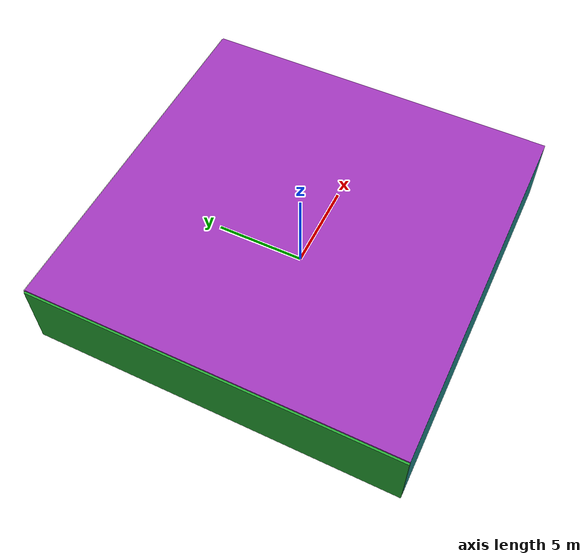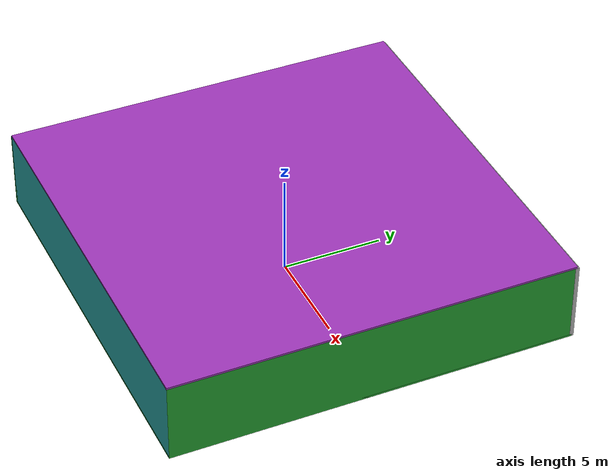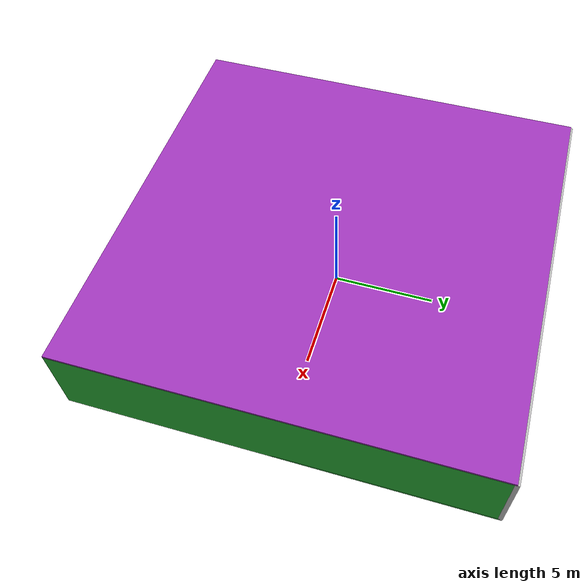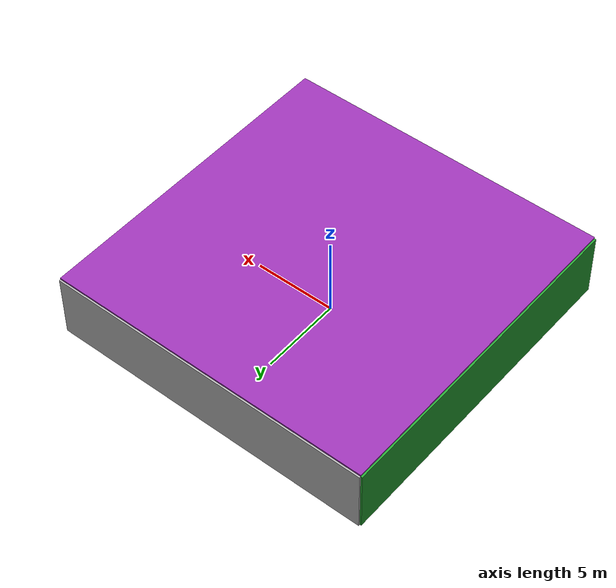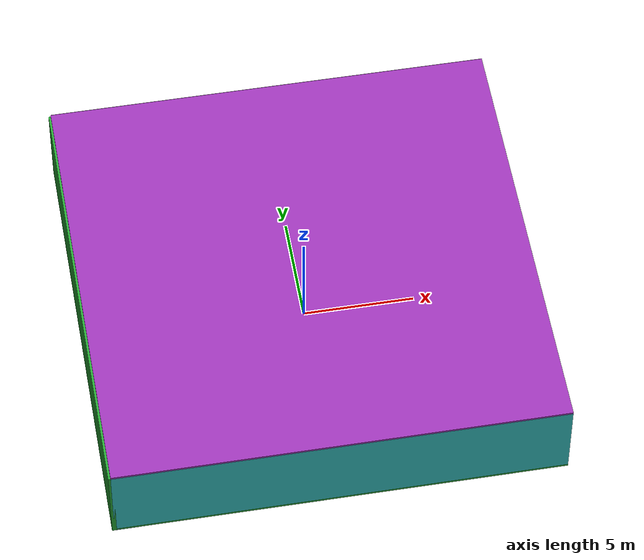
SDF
<sdf version="1.4">
 <world name="default">
  <physics type="ode">
   <max_step_size>0.001</max_step_size>
   <real_time_factor>1</real_time_factor>
   <real_time_update_rate>1000</real_time_update_rate>
   <gravity>0 0 -9.8</gravity>
  </physics>
  <scene><ambient>0.4 0.4 0.4 1</ambient><background>0.7 0.7 0.7 1</background><shadows>1</shadows></scene>
  <model name="Surrounding">
   <static>1</static>
   <link name="Ceiling">
    <collision name="Ceiling_Collision"><geometry><box><size>20 20 0.1</size></box></geometry></collision>
    <visual name="Ceiling_Visual">
     <geometry><box><size>20 20 0.1</size></box></geometry>
     <material>
      <script><uri>file://media/materials/scripts/gazebo.material</uri><name>Gazebo/Purple</name></script>
     </material>
    </visual>
    <pose>0 0 4.05 0 0 0</pose>
   </link>
   <link name="Wall_South">
    <collision name="Wall_South_Collision">
     <geometry><box><size>20 0 4</size></box></geometry>
     <pose>0 0 2 0 -0 0</pose>
    </collision>
    <visual name="Wall_South_Visual">
     <pose>0 0 2 0 -0 0</pose>
     <geometry><box><size>20 0 4</size></box></geometry>
     <material>
      <script>
       <uri>file://media/materials/scripts/gazebo.material</uri>
       <name>Gazebo/TurquoiseGlowOutline</name>
      </script>
     </material>
    </visual>
    <velocity_decay><linear>0</linear><angular>0</angular></velocity_decay>
    <pose>0 -10 0 0 -0 0</pose>
   </link>
   <link name="Wall_East">
    <collision name="Wall_21_Collision">
     <geometry><box><size>20 0 4</size></box></geometry>
     <pose>0 0 2 0 -0 0</pose>
    </collision>
    <visual name="Wall_21_Visual">
     <pose>0 0 2 0 -0 0</pose>
     <geometry><box><size>20 0 4</size></box></geometry>
     <material>
      <script><uri>file://media/materials/scripts/gazebo.material</uri><name>Gazebo/GreenGlow</name></script>
     </material>
    </visual>
    <velocity_decay><linear>0</linear><angular>0</angular></velocity_decay>
    <pose>10 0 0 0 -0 1.5708</pose>
   </link>
   <link name="Wall_North">
    <collision name="Wall_22_Collision">
     <geometry><box><size>20 0.2 4</size></box></geometry>
     <pose>0 0 2 0 -0 0</pose>
    </collision>
    <visual name="Wall_22_Visual">
     <pose>0 0 2 0 -0 0</pose>
     <geometry><box><size>20 0.2 4</size></box></geometry>
     <material>
      <script><uri>file://media/materials/scripts/gazebo.material</uri><name>Gazebo/JointAnchor</name></script>
     </material>
    </visual>
    <velocity_decay><linear>0</linear><angular>0</angular></velocity_decay>
    <pose>0 10 0 0 -0 0</pose>
   </link>
   <link name="Wall_West">
    <collision name="Wall_23_Collision">
     <geometry><box><size>20 0.2 4</size></box></geometry>
     <pose>0 0 2 0 -0 0</pose>
    </collision>
    <visual name="Wall_23_Visual">
     <pose>0 0 2 0 -0 0</pose>
     <geometry><box><size>20 0.2 4</size></box></geometry>
     <material>
      <script><uri>file://media/materials/scripts/gazebo.material</uri><name>Gazebo/GreenGlow</name></script>
     </material>
    </visual>
    <velocity_decay><linear>0</linear><angular>0</angular></velocity_decay>
    <pose>-10 0 0 0 0 -1.5708</pose>
   </link>
   <link name="Ground_link">
    <collision name="collision">
     <pose>0 0 .05 0 -0 0</pose>
     <geometry><box><size>20 20 0.1</size></box></geometry>
    </collision>
    <visual name="visual">
     <pose>0 0 .05 0 -0 0</pose>
     <geometry><box><size>20 20 0.1</size></box></geometry>
     <material>
      <script><uri>file://media/materials/scripts/gazebo.material</uri><name>Gazebo/Green</name></script>
     </material>
    </visual>
   </link>
   <static>1</static>
  </model>
  <spherical_coordinates>
   <surface_model>EARTH_WGS84</surface_model>
   <latitude_deg>0</latitude_deg>
   <longitude_deg>0</longitude_deg>
   <elevation>0</elevation>
   <heading_deg>0</heading_deg>
  </spherical_coordinates>
  <light name="lightball_0" type="diffuse">
   <diffuse>0.8 0.8 0.8 1</diffuse>
   <specular>0.2 0.2 0.2 1</specular>
   <attenuation>
    <range>100</range>
    <constant>0.7</constant>
    <linear>0.01</linear>
    <quadratic>0.001</quadratic>
   </attenuation>
   <direction>-0.5 0.1 -0.9</direction>
   <pose>-3.08782857376 -8.26505951308 2.49262685331 0 0 0</pose>
  </light>
  <light name="lightball_1" type="diffuse">
   <diffuse>0.8 0.8 0.8 1</diffuse>
   <specular>0.2 0.2 0.2 1</specular>
   <attenuation>
    <range>100</range>
    <constant>0.7</constant>
    <linear>0.01</linear>
    <quadratic>0.001</quadratic>
   </attenuation>
   <direction>-0.5 0.1 -0.9</direction>
   <pose>8.85861634719 3.8787893061 0.813853552293 0 0 0</pose>
  </light>
  <light name="lightball_2" type="diffuse">
   <diffuse>0.8 0.8 0.8 1</diffuse>
   <specular>0.2 0.2 0.2 1</specular>
   <attenuation>
    <range>100</range>
    <constant>0.7</constant>
    <linear>0.01</linear>
    <quadratic>0.001</quadratic>
   </attenuation>
   <direction>-0.5 0.1 -0.9</direction>
   <pose>-6.44087289417 5.60669987175 2.11944027762 0 0 0</pose>
  </light>
  <light name="lightball_3" type="diffuse">
   <diffuse>0.8 0.8 0.8 1</diffuse>
   <specular>0.2 0.2 0.2 1</specular>
   <attenuation>
    <range>100</range>
    <constant>0.7</constant>
    <linear>0.01</linear>
    <quadratic>0.001</quadratic>
   </attenuation>
   <direction>-0.5 0.1 -0.9</direction>
   <pose>-0.162940627146 6.17020219096 3.59523464703 0 0 0</pose>
  </light>
  <light name="lightball_4" type="diffuse">
   <diffuse>0.8 0.8 0.8 1</diffuse>
   <specular>0.2 0.2 0.2 1</specular>
   <attenuation>
    <range>100</range>
    <constant>0.7</constant>
    <linear>0.01</linear>
    <quadratic>0.001</quadratic>
   </attenuation>
   <direction>-0.5 0.1 -0.9</direction>
   <pose>0.894139801584 -1.46853228296 2.09440793782 0 0 0</pose>
  </light>
  <include><uri>model://cabinet</uri><pose>-3.30982772778 -6.79389653805 0 0 0 1.57144403572</pose></include>
  <include>
   <uri>model://robocup_3Dsim_goal</uri>
   <pose>1.02936121407 4.54039006681 0 0 0 2.09829540787</pose>
  </include>
 </world>
</sdf>

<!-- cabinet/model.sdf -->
<sdf version="1.5">
  <model name="cabinet">
    <static>true</static>
    <link name="cabinet_bottom_plate">
      <inertial>
        <pose>0 0 -1 0 0 0</pose>
        <inertia>
          <ixx>2.050000</ixx>
          <ixy>0</ixy>
          <ixz>0</ixz>
          <iyy>2.050000</iyy>
          <iyz>0</iyz>
          <izz>2.050000</izz>
        </inertia>
        <mass>25.000000</mass>
      </inertial>
      <collision name="cabinet_bottom_plate_geom">
        <pose>0 0 0.010000 0 0 0</pose>
        <geometry>
          <box>
            <size>0.450000 0.450000 0.020000</size>
          </box>
        </geometry>
      </collision>
      <visual name="cabinet_bottom_plate_geom_visual">
        <pose>0 0 0.010000 0 0 0</pose>
        <geometry>
          <box>
            <size>0.450000 0.450000 0.020000</size>
          </box>
        </geometry>
        <material>
          <script>
            <uri>model://media/materials/scripts/gazebo.material</uri>
            <name>Gazebo/Wood</name>
          </script>
        </material>
      </visual>
      <collision name="cabinet_bottom_plate_geom_cabinet_back_plate">
        <pose>0.235000 0 0.510000 0 0 0</pose>
        <geometry>
          <box>
            <size>0.020000 0.450000 1.020000</size>
          </box>
        </geometry>
      </collision>
      <visual name="cabinet_bottom_plate_geom_cabinet_back_plate_visual">
        <pose>0.235000 0 0.510000 0 0 0</pose>
        <geometry>
          <box>
            <size>0.020000 0.450000 1.020000</size>
          </box>
        </geometry>
        <material>
          <script>
            <uri>model://media/materials/scripts/gazebo.material</uri>
            <name>Gazebo/Wood</name>
          </script>
        </material>
      </visual>
      <collision name="cabinet_bottom_plate_geom_cabinet_left_plate">
        <pose>0 0.235000 0.510000 0 0 0</pose>
        <geometry>
          <box>
            <size>0.450000 0.020000 1.020000</size>
          </box>
        </geometry>
      </collision>
      <visual name="cabinet_bottom_plate_geom_cabinet_left_plate_visual">
        <pose>0 0.235000 0.510000 0 0 0</pose>
        <geometry>
          <box>
            <size>0.450000 0.020000 1.020000</size>
          </box>
        </geometry>
        <material>
          <script>
            <uri>model://media/materials/scripts/gazebo.material</uri>
            <name>Gazebo/Wood</name>
          </script>
        </material>
      </visual>
      <collision name="cabinet_bottom_plate_geom_cabinet_middle_plate">
        <pose>0 0 0.510000 0 0 0</pose>
        <geometry>
          <box>
            <size>0.450000 0.450000 0.020000</size>
          </box>
        </geometry>
      </collision>
      <visual name="cabinet_bottom_plate_geom_cabinet_middle_plate_visual">
        <pose>0 0 0.510000 0 0 0</pose>
        <geometry>
          <box>
            <size>0.450000 0.450000 0.020000</size>
          </box>
        </geometry>
        <material>
          <script>
            <uri>model://media/materials/scripts/gazebo.material</uri>
            <name>Gazebo/Wood</name>
          </script>
        </material>
      </visual>
      <collision name="cabinet_bottom_plate_geom_cabinet_right_plate">
        <pose>0 -0.235000 0.510000 0 0 0</pose>
        <geometry>
          <box>
            <size>0.450000 0.020000 1.020000</size>
          </box>
        </geometry>
      </collision>
      <visual name="cabinet_bottom_plate_geom_cabinet_right_plate_visual">
        <pose>0 -0.235000 0.510000 0 0 0</pose>
        <geometry>
          <box>
            <size>0.450000 0.020000 1.020000</size>
          </box>
        </geometry>
        <material>
          <script>
            <uri>model://media/materials/scripts/gazebo.material</uri>
            <name>Gazebo/Wood</name>
          </script>
        </material>
      </visual>
      <collision name="cabinet_bottom_plate_geom_cabinet_top_plate">
        <pose>0 0 1.010000 0 0 0</pose>
        <geometry>
          <box>
            <size>0.450000 0.450000 0.020000</size>
          </box>
        </geometry>
      </collision>
      <visual name="cabinet_bottom_plate_geom_cabinet_top_plate_visual">
        <pose>0 0 1.010000 0 0 0</pose>
        <geometry>
          <box>
            <size>0.450000 0.450000 0.020000</size>
          </box>
        </geometry>
        <material>
          <script>
            <uri>model://media/materials/scripts/gazebo.material</uri>
            <name>Gazebo/Wood</name>
          </script>
        </material>
      </visual>
    </link>
  </model>
</sdf>

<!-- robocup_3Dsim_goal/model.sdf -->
<sdf version="1.5">
  <model name="robocup_3d_goal">
    <static>true</static>
    <link name="left_post">
      <pose>0 1.05 0.45 0 0 0</pose>
      <collision name="collision">
        <geometry>
          <cylinder>
            <radius>0.05</radius>
            <length>0.9</length>
          </cylinder>
        </geometry>
      </collision>
      <visual name="visual">
        <geometry>
          <cylinder>
            <radius>0.05</radius>
            <length>0.9</length>
          </cylinder>
        </geometry>
        <material>
          <script>
            <uri>file://media/materials/scripts/gazebo.material</uri>
            <name>Gazebo/ZincYellow</name>
          </script>
        </material>
      </visual>
    </link>
    <link name="left_support_horiz_lower">
      <pose>0.30 1.05 0.01 0 0 0</pose>
      <collision name="collision">
        <geometry>
          <box>
            <size>0.50 0.02 0.02</size>
          </box>
        </geometry>
      </collision>
      <visual name="visual">
        <geometry>
          <box>
            <size>0.50 0.02 0.02</size>
          </box>
        </geometry>
        <material>
          <script>
            <uri>file://media/materials/scripts/gazebo.material</uri>
            <name>Gazebo/White</name>
          </script>
        </material>
      </visual>
    </link>
    <link name="left_support_horiz_upper">
      <pose>0.30 1.05 0.79 0 0 0</pose>
      <collision name="collision">
        <geometry>
          <box>
            <size>0.50 0.02 0.02</size>
          </box>
        </geometry>
      </collision>
      <visual name="visual">
        <geometry>
          <box>
            <size>0.50 0.02 0.02</size>
          </box>
        </geometry>
        <material>
          <script>
            <uri>file://media/materials/scripts/gazebo.material</uri>
            <name>Gazebo/White</name>
          </script>
        </material>
      </visual>
    </link>
    <link name="left_support_vertical">
      <pose>0.56 1.05 0.4 0 1.5708 0</pose>
      <collision name="collision">
        <geometry>
          <box>
            <size>0.80 0.02 0.02</size>
          </box>
        </geometry>
      </collision>
      <visual name="visual">
        <geometry>
          <box>
            <size>0.80 0.02 0.02</size>
          </box>
        </geometry>
        <material>
          <script>
            <uri>file://media/materials/scripts/gazebo.material</uri>
            <name>Gazebo/White</name>
          </script>
        </material>
      </visual>
    </link>
    <link name="right_support_horiz_lower">
      <pose>0.30 -1.05 0.01 0 0 0</pose>
      <collision name="collision">
        <geometry>
          <box>
            <size>0.50 0.02 0.02</size>
          </box>
        </geometry>
      </collision>
      <visual name="visual">
        <geometry>
          <box>
            <size>0.50 0.02 0.02</size>
          </box>
        </geometry>
        <material>
          <script>
            <uri>file://media/materials/scripts/gazebo.material</uri>
            <name>Gazebo/White</name>
          </script>
        </material>
      </visual>
    </link>
    <link name="right_support_horiz_upper">
      <pose>0.30 -1.05 0.79 0 0 0</pose>
      <collision name="collision">
        <geometry>
          <box>
            <size>0.50 0.02 0.02</size>
          </box>
        </geometry>
      </collision>
      <visual name="visual">
        <geometry>
          <box>
            <size>0.50 0.02 0.02</size>
          </box>
        </geometry>
        <material>
          <script>
            <uri>file://media/materials/scripts/gazebo.material</uri>
            <name>Gazebo/White</name>
          </script>
        </material>
      </visual>
    </link>
    <link name="right_support_vertical">
      <pose>0.56 -1.05 0.4 0 1.5708 0</pose>
      <collision name="collision">
        <geometry>
          <box>
            <size>0.80 0.02 0.02</size>
          </box>
        </geometry>
      </collision>
      <visual name="visual">
        <geometry>
          <box>
            <size>0.80 0.02 0.02</size>
          </box>
        </geometry>
        <material>
          <script>
            <uri>file://media/materials/scripts/gazebo.material</uri>
            <name>Gazebo/White</name>
          </script>
        </material>
      </visual>
    </link>
    <link name="center_support_horiz_lower">
      <pose>0.56 0 0.01 0 1.5708 0</pose>
      <collision name="collision">
        <geometry>
          <box>
            <size>0.02 2.08 0.02</size>
          </box>
        </geometry>
      </collision>
      <visual name="visual">
        <geometry>
          <box>
            <size>0.02 2.08 0.02</size>
          </box>
        </geometry>
        <material>
          <script>
            <uri>file://media/materials/scripts/gazebo.material</uri>
            <name>Gazebo/White</name>
          </script>
        </material>
      </visual>
    </link>
    <link name="center_support_horiz_upper">
      <pose>0.56 0 0.79 0 1.5708 0</pose>
      <collision name="collision">
        <geometry>
          <box>
            <size>0.02 2.08 0.02</size>
          </box>
        </geometry>
      </collision>
      <visual name="visual">
        <geometry>
          <box>
            <size>0.02 2.08 0.02</size>
          </box>
        </geometry>
        <material>
          <script>
            <uri>file://media/materials/scripts/gazebo.material</uri>
            <name>Gazebo/White</name>
          </script>
        </material>
      </visual>
    </link>
    <link name="right_post">
      <pose>0 -1.05 0.45 0 0 0</pose>
      <collision name="collision">
        <geometry>
          <cylinder>
            <radius>0.05</radius>
            <length>0.9</length>
          </cylinder>
        </geometry>
      </collision>
      <visual name="visual">
        <geometry>
          <cylinder>
            <radius>0.05</radius>
            <length>0.9</length>
          </cylinder>
        </geometry>
        <material>
          <script>
            <uri>file://media/materials/scripts/gazebo.material</uri>
            <name>Gazebo/ZincYellow</name>
          </script>
        </material>
      </visual>
    </link>
    <link name="crossbar">
      <pose>0 0 0.85 1.57 1.57 0</pose>
      <collision name="collision">
        <geometry>
          <cylinder>
            <radius>0.05</radius>
            <length>2.0</length>
          </cylinder>
        </geometry>
      </collision>
      <visual name="visual">
        <geometry>
          <cylinder>
            <radius>0.05</radius>
            <length>2.0</length>
          </cylinder>
        </geometry>
        <material>
          <script>
            <uri>file://media/materials/scripts/gazebo.material</uri>
            <name>Gazebo/ZincYellow</name>
          </script>
        </material>
      </visual>
    </link>
    <link name="center_net">
      <pose>0.56 0 0.40 0 0 0</pose>
      <collision name="collision">
        <geometry>
          <box>
            <size>0.01 2.1 0.80</size>
          </box>
        </geometry>
      </collision>
      <visual name="visual">
        <geometry>
          <box>
            <size>0.01 2.1 0.80</size>
          </box>
        </geometry>
        <material>
          <script>
            <uri>model://../model_source/models/robocup09_spl_field/materials/scripts/</uri>
            <uri>model://../model_source/models/robocup09_spl_field/materials/textures/</uri>
            <name>RoboCup/Net</name>
          </script>
        </material>
      </visual>
    </link>
    <link name="left_net">
      <pose>0.30 1.05 0.40 0 0 0</pose>
      <collision name="collision">
        <geometry>
          <box>
            <size>0.50 0.01 0.76</size>
          </box>
        </geometry>
      </collision>
      <visual name="visual">
        <geometry>
          <box>
            <size>0.50 0.01 0.76</size>
          </box>
        </geometry>
        <material>
          <script>
            <uri>model://../model_source/models/robocup09_spl_field/materials/scripts/</uri>
            <uri>model://../model_source/models/robocup09_spl_field/materials/textures/</uri>
            <name>RoboCup/Net</name>
          </script>
        </material>
      </visual>
    </link>
    <link name="right_net">
      <pose>0.30 -1.05 0.40 0 0 0</pose>
      <collision name="collision">
        <geometry>
          <box>
            <size>0.50 0.01 0.76</size>
          </box>
        </geometry>
      </collision>
      <visual name="visual">
        <geometry>
          <box>
            <size>0.50 0.01 0.76</size>
          </box>
        </geometry>
        <material>
          <script>
            <uri>model://../model_source/models/robocup09_spl_field/materials/scripts/</uri>
            <uri>model://../model_source/models/robocup09_spl_field/materials/textures/</uri>
            <name>RoboCup/Net</name>
          </script>
        </material>
      </visual>
    </link>
  </model>
</sdf>
